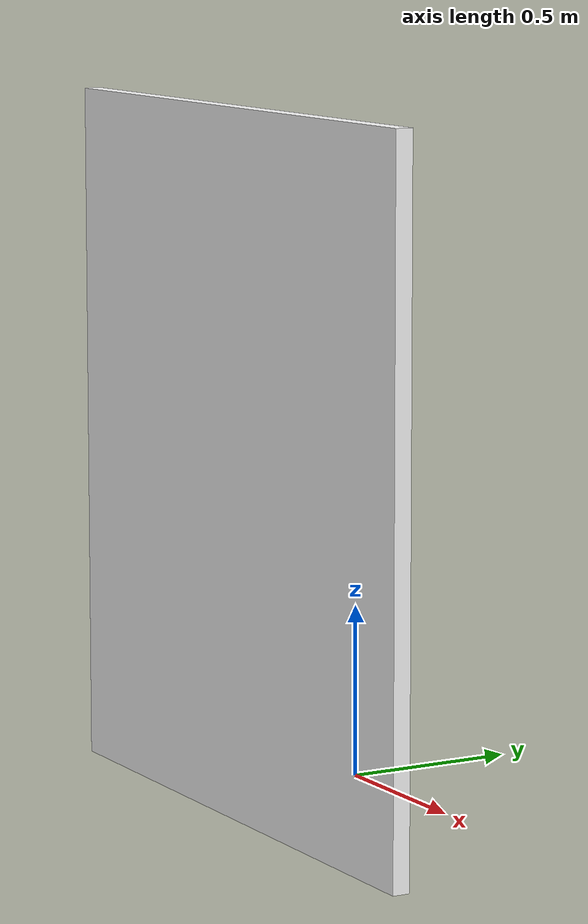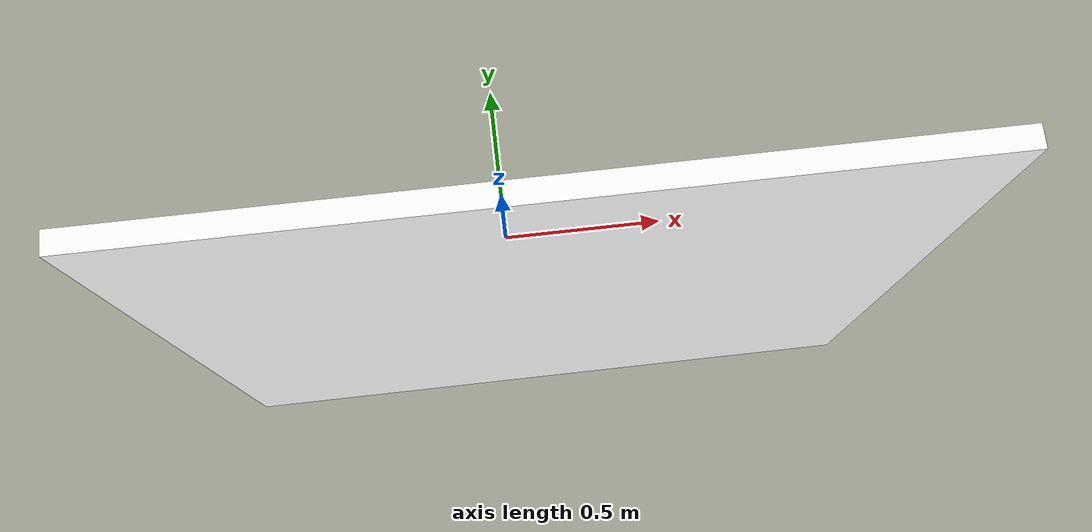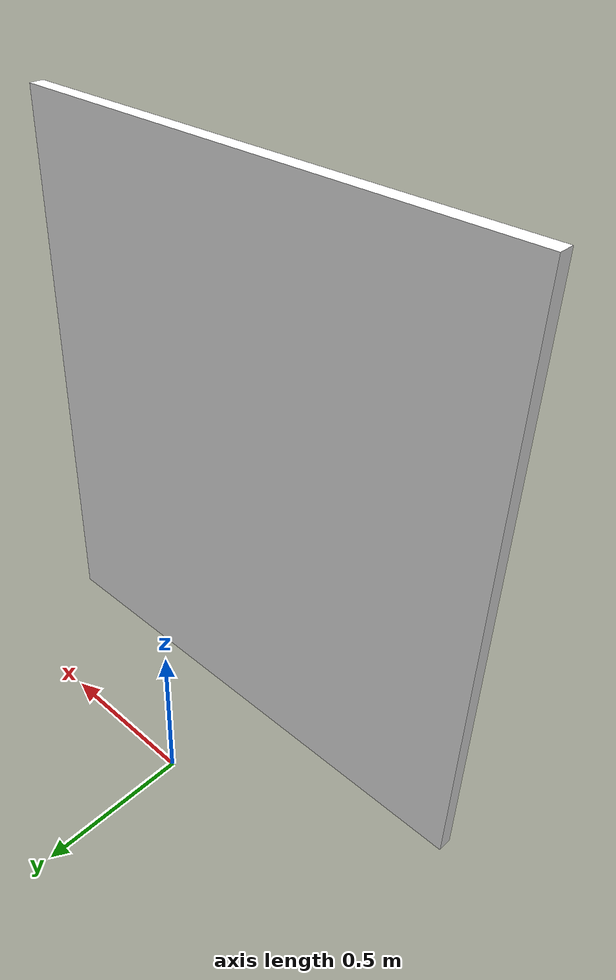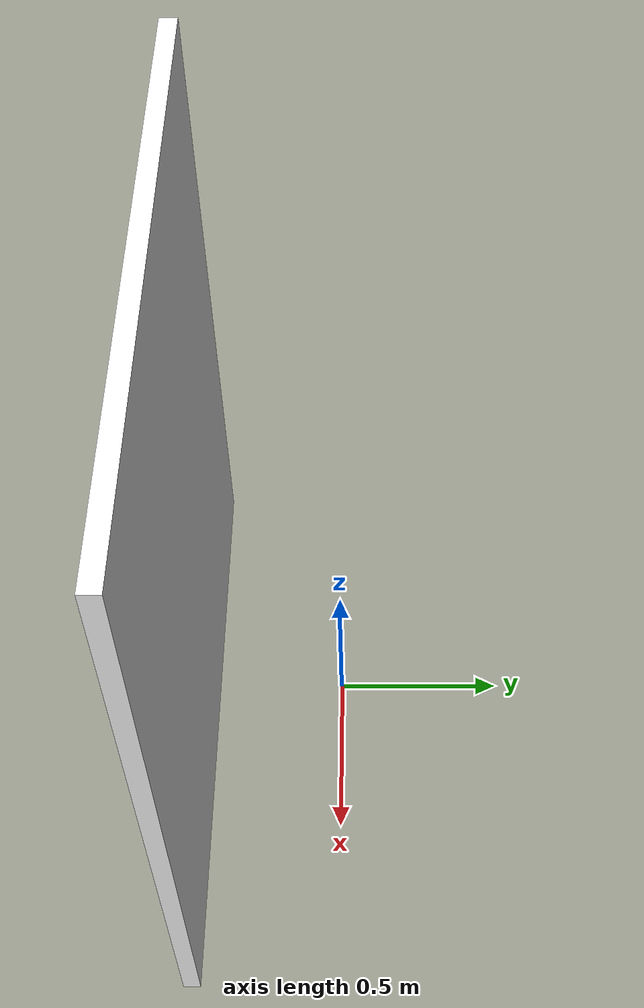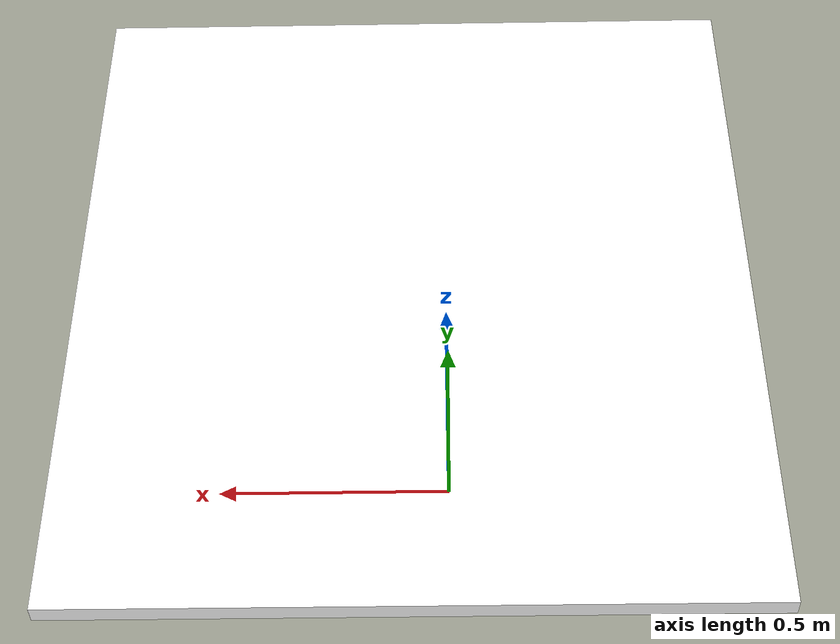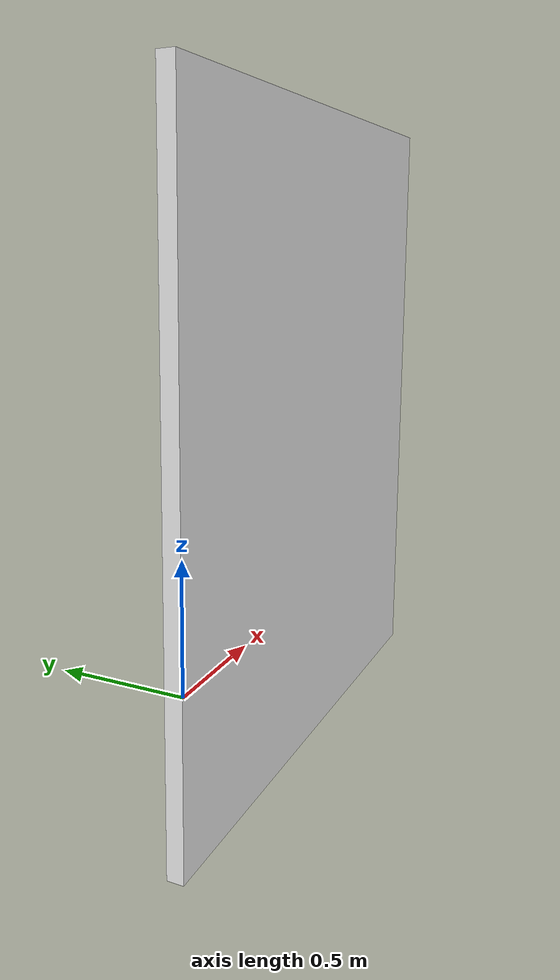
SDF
<?xml version='1.0'?>
<sdf version='1.6'>
  <model name='elevator_door'>
    <link name='link'>
      <pose frame=''>0.086726 -0.429033 0.450416 0 -0 0</pose>
      <inertial>
        <mass>1</mass>
        <inertia>
          <ixx>0.166667</ixx>
          <ixy>0</ixy>
          <ixz>0</ixz>
          <iyy>0.166667</iyy>
          <iyz>0</iyz>
          <izz>0.166667</izz>
        </inertia>
        <pose frame=''>0 0 0.5 0 -0 0</pose>
      </inertial>
      <self_collide>0</self_collide>
      <kinematic>0</kinematic>
      <gravity>1</gravity>
      <visual name='visual'>
        <geometry>
          <box>
            <size>1.8 0.05 2</size>
          </box>
        </geometry>
        <material>
          <script>
            <uri>model://elevator_door/materials/scripts</uri>
            <uri>model://elevator_door/materials/textures</uri>
            <name>Elevator_door/Picture</name>
          </script>
          <shader type='pixel'>
            <normal_map>__default__</normal_map>
          </shader>
          <ambient>1 1 1 1</ambient>
          <diffuse>1 1 1 1</diffuse>
          <specular>0 0 0 1</specular>
          <emissive>0 0 0 1</emissive>
        </material>
        <pose frame=''>0 0 0.5 0 -0 0</pose>
        <transparency>0</transparency>
        <cast_shadows>1</cast_shadows>
      </visual>
      <collision name='collision'>
        <laser_retro>0</laser_retro>
        <max_contacts>10</max_contacts>
        <pose frame=''>0 0 0.5 0 -0 0</pose>
        <geometry>
          <box>
            <size>1.8 0.05 2</size>
          </box>
        </geometry>
        <surface>
          <friction>
            <ode>
              <mu>1</mu>
              <mu2>1</mu2>
              <fdir1>0 0 0</fdir1>
              <slip1>0</slip1>
              <slip2>0</slip2>
            </ode>
            <torsional>
              <coefficient>1</coefficient>
              <patch_radius>0</patch_radius>
              <surface_radius>0</surface_radius>
              <use_patch_radius>1</use_patch_radius>
              <ode>
                <slip>0</slip>
              </ode>
            </torsional>
          </friction>
          <bounce>
            <restitution_coefficient>0</restitution_coefficient>
            <threshold>1e+06</threshold>
          </bounce>
          <contact>
            <collide_without_contact>0</collide_without_contact>
            <collide_without_contact_bitmask>1</collide_without_contact_bitmask>
            <collide_bitmask>1</collide_bitmask>
            <ode>
              <soft_cfm>0</soft_cfm>
              <soft_erp>0.2</soft_erp>
              <kp>1e+13</kp>
              <kd>1</kd>
              <max_vel>0.01</max_vel>
              <min_depth>0</min_depth>
            </ode>
            <bullet>
              <split_impulse>1</split_impulse>
              <split_impulse_penetration_threshold>-0.01</split_impulse_penetration_threshold>
              <soft_cfm>0</soft_cfm>
              <soft_erp>0.2</soft_erp>
              <kp>1e+13</kp>
              <kd>1</kd>
            </bullet>
          </contact>
        </surface>
      </collision>
    </link>
    <static>1</static>
    <allow_auto_disable>1</allow_auto_disable>
  </model>
</sdf>
